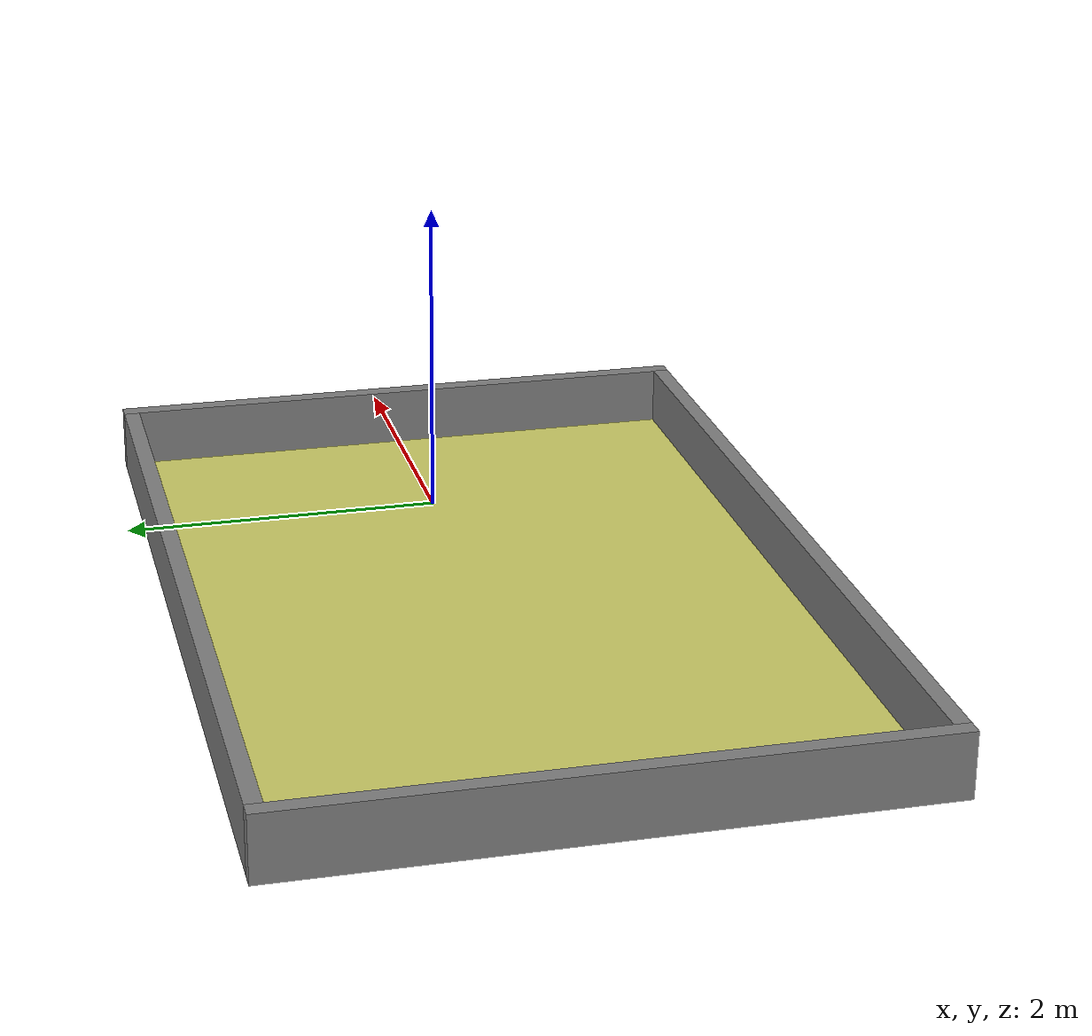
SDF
<?xml version='1.0'?>
<sdf version='1.4'>

  <model name="field">
    <static>true</static>
    <pose>0 0 0 0 0 0</pose>
    <link name="floor">
     <visual name="floor">
        <pose>-1.7 0 0.01 0 0 0</pose>
        <cast_shadows>false</cast_shadows>
        <geometry>
          <box>
            <size>5.4 3.6 0.1</size>
          </box>
        </geometry>
        <material>
          <ambient>0.8 0.8 0.4 1</ambient>
          <diffuse>0.8 0.8 0.4 1</diffuse>
          <specular>0.8 0.8 0.4 1</specular>
          <emissive>0 0 0 0</emissive>
        </material>
      </visual>
      <collision name="floor_collision">
        <pose>-1.7 0 0.01 0 0 0</pose>
        <geometry>
          <box>
            <size>5.4 3.6 0.1</size>
          </box>
        </geometry>
      </collision>
    </link>
    <link name="east_wall">
     <visual name="east_wall">
        <pose>-1.7 -1.85 0.22 0 0 0</pose>
        <cast_shadows>false</cast_shadows>
        <geometry>
          <box>
            <size>5.42 0.1 0.4</size>
          </box>
        </geometry>
        <material>
        <ambient>0.5 0.5 0.5 1</ambient>
          <diffuse>0.5 0.5 0.5 1</diffuse>
          <specular>0.5 0.5 0.5 1</specular>
          <emissive>0 0 0 0</emissive>
        </material>
      </visual>
      <collision name="east_wall_collision">
        <pose>-1.7 -1.85 0.22 0 0 0</pose>
        <geometry>
          <box>
            <size>5.42 0.1 0.4</size>
          </box>
        </geometry>
      </collision>
    </link>
    <link name="west_wall">
     <visual name="west_wall">
        <pose>-1.7 1.85 0.22 0 0 0</pose>
        <cast_shadows>false</cast_shadows>
        <geometry>
          <box>
            <size>5.42 0.1 0.4</size>
          </box>
        </geometry>
        <material>
          <ambient>0.5 0.5 0.5 1</ambient>
          <diffuse>0.5 0.5 0.5 1</diffuse>
          <specular>0.5 0.5 0.5 1</specular>
          <emissive>0 0 0 0</emissive>
        </material>
      </visual>
      <collision name="west_wall_collision">
        <pose>-1.7 1.85 0.22 0 0 0</pose>
        <geometry>
          <box>
            <size>5.42 0.1 0.4</size>
          </box>
        </geometry>
      </collision>
    </link>
    <link name="south_wall">
     <visual name="south_wall">
        <pose>1.05 0 0.22 0 0 0</pose>
        <cast_shadows>false</cast_shadows>
        <geometry>
          <box>
            <size>0.1 3.8 0.4</size>
          </box>
        </geometry>
        <material>
          <ambient>0.5 0.5 0.5 1</ambient>
          <diffuse>0.5 0.5 0.5 1</diffuse>
          <specular>0.5 0.5 0.5 1</specular>
          <emissive>0 0 0 0</emissive>
        </material>
      </visual>
      <collision name="south_wall_collision">
        <pose>1.05 0 0.22 0 0 0</pose>
        <geometry>
          <box>
            <size>0.1 3.8 0.4</size>
          </box>
        </geometry>
      </collision>
    </link>
    <link name="north_wall">
     <visual name="north_wall">
        <pose>-4.46 0 0.22 0 0 0</pose>
        <cast_shadows>false</cast_shadows>
        <geometry>
          <box>
            <size>0.1 3.8 0.4</size>
          </box>
        </geometry>
        <material>
          <ambient>0.5 0.5 0.5 1</ambient>
          <diffuse>0.5 0.5 0.5 1</diffuse>
          <specular>0.5 0.5 0.5 1</specular>
          <emissive>0 0 0 0</emissive>
        </material>
      </visual>
      <collision name="north_wall_collision">
        <pose>-4.46 0 0.22 0 0 0</pose>
        <geometry>
          <box>
            <size>0.1 3.8 0.4</size>
          </box>
        </geometry>
      </collision>
    </link>
  </model>
</sdf>
